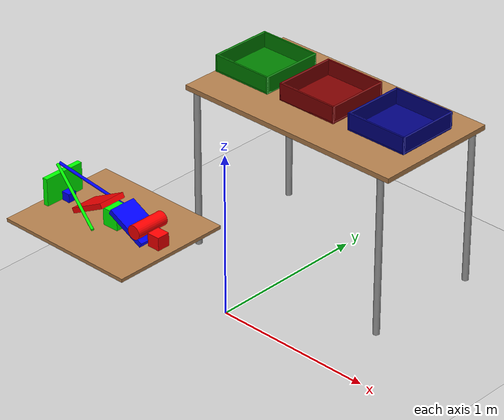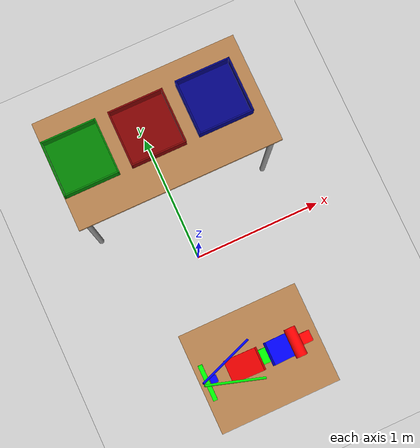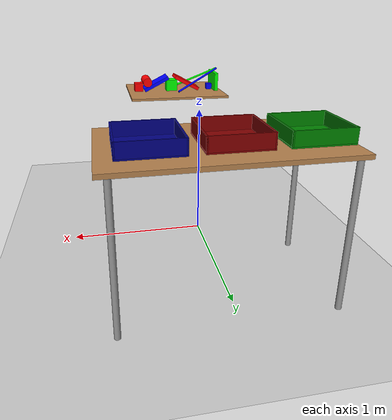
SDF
<sdf version="1.7">
 <world name="default">
  <light name="sun" type="directional">
   <pose>0 0 10 0 -0 0</pose>
   <diffuse>0.8 0.8 0.8 1</diffuse>
   <specular>0.2 0.2 0.2 1</specular>
   <attenuation>
    <range>1000</range>
    <constant>0.9</constant>
    <linear>0.01</linear>
    <quadratic>0.001</quadratic>
   </attenuation>
   <direction>-0.5 0.1 -0.9</direction>
   <spot><inner_angle>0</inner_angle><outer_angle>0</outer_angle><falloff>0</falloff></spot>
  </light>
  <model name="ground_plane">
   <static>1</static>
   <link name="link">
    <collision name="collision">
     <geometry><plane><normal>0 0 1</normal><size>100 100</size></plane></geometry>
     <surface><friction><ode><mu>100</mu><mu2>50</mu2></ode></friction></surface>
    </collision>
    <visual name="visual">
     <cast_shadows>0</cast_shadows>
     <geometry><plane><normal>0 0 1</normal><size>100 100</size></plane></geometry>
     <material>
      <script><uri>file://media/materials/scripts/gazebo.material</uri><name>Gazebo/Grey</name></script>
     </material>
    </visual>
   </link>
  </model>
  <gravity>0 0 -9.8</gravity>
  <magnetic_field>6e-06 2.3e-05 -4.2e-05</magnetic_field>
  <atmosphere type="adiabatic"/>
  <physics type="ode">
   <max_step_size>0.001</max_step_size>
   <real_time_factor>1</real_time_factor>
   <real_time_update_rate>1000</real_time_update_rate>
  </physics>
  <scene><ambient>0.4 0.4 0.4 1</ambient><background>0.7 0.7 0.7 1</background><shadows>1</shadows></scene>
  <audio><device>default</device></audio>
  <spherical_coordinates>
   <surface_model>EARTH_WGS84</surface_model>
   <latitude_deg>0</latitude_deg>
   <longitude_deg>0</longitude_deg>
   <elevation>0</elevation>
   <heading_deg>0</heading_deg>
  </spherical_coordinates>
  <model name="table">
   <static>1</static>
   <link name="link">
    <collision name="surface">
     <pose>0 0 1 0 -0 0</pose>
     <geometry><box><size>1.5 0.8 0.03</size></box></geometry>
     <surface>
      <friction><ode><mu>10</mu><mu2>5</mu2></ode></friction>
      <contact><ode><soft_cfm>0.0001</soft_cfm><soft_erp>0.4</soft_erp><kp>1e+06</kp><kd>10</kd></ode></contact>
     </surface>
    </collision>
    <visual name="visual1">
     <pose>0 0 1 0 -0 0</pose>
     <geometry><box><size>1.5 0.8 0.03</size></box></geometry>
     <material>
      <script><uri>file://media/materials/scripts/gazebo.material</uri><name>Gazebo/Wood</name></script>
     </material>
    </visual>
    <collision name="front_left_leg">
     <pose>0.68 0.38 0.5 0 -0 0</pose>
     <geometry><cylinder><radius>0.02</radius><length>1</length></cylinder></geometry>
    </collision>
    <visual name="front_left_leg">
     <pose>0.68 0.38 0.5 0 -0 0</pose>
     <geometry><cylinder><radius>0.02</radius><length>1</length></cylinder></geometry>
     <material>
      <script><uri>file://media/materials/scripts/gazebo.material</uri><name>Gazebo/Grey</name></script>
     </material>
    </visual>
    <collision name="front_right_leg">
     <pose>0.68 -0.38 0.5 0 -0 0</pose>
     <geometry><cylinder><radius>0.02</radius><length>1</length></cylinder></geometry>
    </collision>
    <visual name="front_right_leg">
     <pose>0.68 -0.38 0.5 0 -0 0</pose>
     <geometry><cylinder><radius>0.02</radius><length>1</length></cylinder></geometry>
     <material>
      <script><uri>file://media/materials/scripts/gazebo.material</uri><name>Gazebo/Grey</name></script>
     </material>
    </visual>
    <collision name="back_right_leg">
     <pose>-0.68 -0.38 0.5 0 -0 0</pose>
     <geometry><cylinder><radius>0.02</radius><length>1</length></cylinder></geometry>
    </collision>
    <visual name="back_right_leg">
     <pose>-0.68 -0.38 0.5 0 -0 0</pose>
     <geometry><cylinder><radius>0.02</radius><length>1</length></cylinder></geometry>
     <material>
      <script><uri>file://media/materials/scripts/gazebo.material</uri><name>Gazebo/Grey</name></script>
     </material>
    </visual>
    <collision name="back_left_leg">
     <pose>-0.68 0.38 0.5 0 -0 0</pose>
     <geometry><cylinder><radius>0.02</radius><length>1</length></cylinder></geometry>
    </collision>
    <visual name="back_left_leg">
     <pose>-0.68 0.38 0.5 0 -0 0</pose>
     <geometry><cylinder><radius>0.02</radius><length>1</length></cylinder></geometry>
     <material>
      <script><uri>file://media/materials/scripts/gazebo.material</uri><name>Gazebo/Grey</name></script>
     </material>
    </visual>
    <inertial>
     <inertia><ixx>1</ixx><ixy>0</ixy><ixz>0</ixz><iyy>1</iyy><iyz>0</iyz><izz>1</izz></inertia>
     <mass>50</mass>
    </inertial>
   </link>
   <pose>0.056083 0.801191 -1.2e-05 0 -0 2.5e-05</pose>
  </model>
  <plugin name="gazebo_link_attacher" filename="libgazebo_link_attacher.so"/>
  <plugin name="gazebo_ros_state" filename="libgazebo_ros_state.so">
   <namespace>/gazebo</namespace>
   <update_rate>100</update_rate>
  </plugin>
  <model name="cube_b">
   <link name="link_2">
    <inertial>
     <mass>2</mass>
     <inertia><ixx>0.0452</ixx><ixy>0</ixy><ixz>0</ixz><iyy>0.0452</iyy><iyz>0</iyz><izz>0.0452</izz></inertia>
    </inertial>
    <visual name="visual">
     <geometry><box><size>0.05 0.05 0.05</size></box></geometry>
     <material>
      <lighting>1</lighting>
      <script><uri>file://media/materials/scripts/gazebo.material</uri><name>Gazebo/Grey</name></script>
      <ambient>0 0 1 1</ambient>
      <diffuse>0 0 1 1</diffuse>
      <specular>0 0 0 1</specular>
      <emissive>0 0 0 1</emissive>
      <shader type="vertex"><normal_map>__default__</normal_map></shader>
     </material>
    </visual>
    <collision name="collision">
     <geometry><box><size>0.05 0.05 0.05</size></box></geometry>
     <surface>
      <friction>
       <ode><mu>0.8</mu><mu2>0.8</mu2><fdir1>0 0 0</fdir1><slip1>0</slip1><slip2>0</slip2></ode>
       <torsional>
        <coefficient>1</coefficient>
        <patch_radius>0</patch_radius>
        <surface_radius>0</surface_radius>
        <use_patch_radius>1</use_patch_radius>
        <ode><slip>0</slip></ode>
       </torsional>
      </friction>
      <bounce><restitution_coefficient>0</restitution_coefficient><threshold>1e+06</threshold></bounce>
      <contact>
       <collide_without_contact>0</collide_without_contact>
       <collide_without_contact_bitmask>1</collide_without_contact_bitmask>
       <collide_bitmask>1</collide_bitmask>
       <ode>
        <soft_cfm>0.0001</soft_cfm>
        <soft_erp>0.4</soft_erp>
        <kp>1e+06</kp>
        <kd>10</kd>
        <max_vel>0.01</max_vel>
        <min_depth>0</min_depth>
       </ode>
      </contact>
     </surface>
    </collision>
   </link>
   <static>0</static>
   <allow_auto_disable>0</allow_auto_disable>
   <pose>-0.286808 -0.861522 1.00937 -1.56964 -0.004148 -0.006249</pose>
  </model>
  <model name="cube_g">
   <link name="link_2">
    <inertial>
     <mass>2</mass>
     <inertia><ixx>0.07181</ixx><iyy>0.07181</iyy><izz>0.07181</izz><ixy>0</ixy><ixz>0</ixz><iyz>0</iyz></inertia>
    </inertial>
    <visual name="visual">
     <geometry><box><size>0.1 0.1 0.1</size></box></geometry>
     <material>
      <lighting>1</lighting>
      <script><uri>file://media/materials/scripts/gazebo.material</uri><name>Gazebo/Grey</name></script>
      <ambient>0 1 0 1</ambient>
      <diffuse>0 1 0 1</diffuse>
      <specular>0 0 0 1</specular>
      <emissive>0 0 0 1</emissive>
      <shader type="vertex"><normal_map>__default__</normal_map></shader>
     </material>
    </visual>
    <collision name="collision">
     <geometry><box><size>0.1 0.1 0.1</size></box></geometry>
     <surface>
      <friction>
       <ode><mu>0.8</mu><mu2>0.8</mu2><fdir1>0 0 0</fdir1><slip1>0</slip1><slip2>0</slip2></ode>
       <torsional>
        <coefficient>1</coefficient>
        <patch_radius>0</patch_radius>
        <surface_radius>0</surface_radius>
        <use_patch_radius>1</use_patch_radius>
        <ode><slip>0</slip></ode>
       </torsional>
      </friction>
      <bounce><restitution_coefficient>0</restitution_coefficient><threshold>1e+06</threshold></bounce>
      <contact>
       <collide_without_contact>0</collide_without_contact>
       <collide_without_contact_bitmask>1</collide_without_contact_bitmask>
       <collide_bitmask>1</collide_bitmask>
       <ode>
        <soft_cfm>0.0001</soft_cfm>
        <soft_erp>0.4</soft_erp>
        <kp>1e+06</kp>
        <kd>10</kd>
        <max_vel>0.01</max_vel>
        <min_depth>0</min_depth>
       </ode>
      </contact>
     </surface>
    </collision>
   </link>
   <static>0</static>
   <allow_auto_disable>0</allow_auto_disable>
   <pose>0.070772 -0.859993 1.03586 0.000975 -0.004261 -0.002007</pose>
  </model>
  <model name="cube_r">
   <link name="link_2">
    <inertial>
     <mass>2</mass>
     <inertia><ixx>0.0593</ixx><ixy>0</ixy><ixz>0</ixz><iyy>0.0593</iyy><iyz>0</iyz><izz>0.0593</izz></inertia>
    </inertial>
    <visual name="visual">
     <geometry><box><size>0.075 0.075 0.075</size></box></geometry>
     <material>
      <lighting>1</lighting>
      <script><uri>file://media/materials/scripts/gazebo.material</uri><name>Gazebo/Grey</name></script>
      <ambient>1 0 0 1</ambient>
      <diffuse>1 0 0 1</diffuse>
      <specular>0 0 0 1</specular>
      <emissive>0 0 0 1</emissive>
      <shader type="vertex"><normal_map>__default__</normal_map></shader>
     </material>
    </visual>
    <collision name="collision">
     <geometry><box><size>0.075 0.075 0.075</size></box></geometry>
     <surface>
      <friction>
       <ode><mu>0.8</mu><mu2>0.8</mu2><fdir1>0 0 0</fdir1><slip1>0</slip1><slip2>0</slip2></ode>
       <torsional>
        <coefficient>1</coefficient>
        <patch_radius>0</patch_radius>
        <surface_radius>0</surface_radius>
        <use_patch_radius>1</use_patch_radius>
        <ode><slip>0</slip></ode>
       </torsional>
      </friction>
      <bounce><restitution_coefficient>0</restitution_coefficient><threshold>1e+06</threshold></bounce>
      <contact>
       <collide_without_contact>0</collide_without_contact>
       <collide_without_contact_bitmask>1</collide_without_contact_bitmask>
       <collide_bitmask>1</collide_bitmask>
       <ode>
        <soft_cfm>0.0001</soft_cfm>
        <soft_erp>0.4</soft_erp>
        <kp>1e+06</kp>
        <kd>10</kd>
        <max_vel>0.01</max_vel>
        <min_depth>0</min_depth>
       </ode>
      </contact>
     </surface>
    </collision>
   </link>
   <static>0</static>
   <allow_auto_disable>0</allow_auto_disable>
   <pose>0.373961 -0.863292 1.02462 1.56665 -0.001117 1.57138</pose>
  </model>
  <model name="cylinder_r">
   <link name="link_0">
    <inertial>
     <mass>0.2</mass>
     <inertia>
      <ixx>0.000747</ixx>
      <ixy>0</ixy>
      <ixz>0</ixz>
      <iyy>0.000747</iyy>
      <iyz>0</iyz>
      <izz>0.00016</izz>
     </inertia>
    </inertial>
    <visual name="visual">
     <geometry><cylinder><radius>0.04</radius><length>0.2</length></cylinder></geometry>
     <material>
      <lighting>1</lighting>
      <script><uri>file://media/materials/scripts/gazebo.material</uri><name>Gazebo/Grey</name></script>
      <ambient>1 0 0 1</ambient>
      <diffuse>1 0 0 1</diffuse>
      <specular>0 0 0 1</specular>
      <emissive>0 0 0 1</emissive>
      <shader type="vertex"><normal_map>__default__</normal_map></shader>
     </material>
    </visual>
    <collision name="collision">
     <geometry><cylinder><radius>0.04</radius><length>0.2</length></cylinder></geometry>
     <surface>
      <friction>
       <ode><mu>0.5</mu><mu2>0.5</mu2><fdir1>0 0 0</fdir1><slip1>0</slip1><slip2>0</slip2></ode>
       <torsional>
        <coefficient>1</coefficient>
        <patch_radius>0</patch_radius>
        <surface_radius>0</surface_radius>
        <use_patch_radius>1</use_patch_radius>
        <ode><slip>0</slip></ode>
       </torsional>
      </friction>
      <bounce><restitution_coefficient>0</restitution_coefficient><threshold>1e+06</threshold></bounce>
      <contact>
       <collide_without_contact>0</collide_without_contact>
       <collide_without_contact_bitmask>1</collide_without_contact_bitmask>
       <collide_bitmask>1</collide_bitmask>
       <ode>
        <soft_cfm>0.0001</soft_cfm>
        <soft_erp>0.4</soft_erp>
        <kp>1e+06</kp>
        <kd>10</kd>
        <max_vel>0.01</max_vel>
        <min_depth>0</min_depth>
       </ode>
      </contact>
     </surface>
    </collision>
   </link>
   <static>0</static>
   <allow_auto_disable>0</allow_auto_disable>
   <pose>0.298514 -0.862242 1.07514 1.62755 -1.54006 -0.05705</pose>
  </model>
  <model name="cylinder_b">
   <link name="link_0">
    <inertial>
     <mass>0.2</mass>
     <inertia><ixx>0.00331</ixx><ixy>0</ixy><ixz>0</ixz><iyy>0.00331</iyy><iyz>0</iyz><izz>7.11e-06</izz></inertia>
    </inertial>
    <visual name="visual">
     <geometry><cylinder><radius>0.00843157</radius><length>0.445034</length></cylinder></geometry>
     <material>
      <lighting>1</lighting>
      <ambient>0 0 1 1</ambient>
      <diffuse>0 0 1 1</diffuse>
      <specular>0.1 0.1 0.1 1</specular>
      <emissive>0 0 0 1</emissive>
      <shader type="vertex"><normal_map>__default__</normal_map></shader>
     </material>
    </visual>
    <collision name="collision">
     <geometry><cylinder><radius>0.008432</radius><length>0.445034</length></cylinder></geometry>
     <surface>
      <friction>
       <ode><mu>0.4</mu><mu2>0.4</mu2><fdir1>0 0 0</fdir1><slip1>0</slip1><slip2>0</slip2></ode>
       <torsional>
        <coefficient>1</coefficient>
        <patch_radius>0</patch_radius>
        <surface_radius>0</surface_radius>
        <use_patch_radius>1</use_patch_radius>
        <ode><slip>0</slip></ode>
       </torsional>
      </friction>
      <bounce><restitution_coefficient>0</restitution_coefficient><threshold>1e+06</threshold></bounce>
      <contact>
       <collide_without_contact>0</collide_without_contact>
       <collide_without_contact_bitmask>1</collide_without_contact_bitmask>
       <collide_bitmask>1</collide_bitmask>
       <ode>
        <soft_cfm>0.0001</soft_cfm>
        <soft_erp>0.4</soft_erp>
        <kp>1e+06</kp>
        <kd>10</kd>
        <max_vel>0.01</max_vel>
        <min_depth>0</min_depth>
       </ode>
      </contact>
     </surface>
    </collision>
   </link>
   <static>0</static>
   <allow_auto_disable>0</allow_auto_disable>
   <pose>-0.167436 -0.786512 1.08354 -1.07767 0.546142 2.18015</pose>
  </model>
  <model name="cylinder_g">
   <link name="link_0">
    <inertial>
     <mass>0.2</mass>
     <inertia><ixx>0.00331</ixx><ixy>0</ixy><ixz>0</ixz><iyy>0.00331</iyy><iyz>0</iyz><izz>7.11e-06</izz></inertia>
    </inertial>
    <visual name="visual">
     <geometry><cylinder><radius>0.00843157</radius><length>0.445034</length></cylinder></geometry>
     <material>
      <lighting>1</lighting>
      <ambient>0 1 0 1</ambient>
      <diffuse>0 1 0 1</diffuse>
      <specular>0.1 0.1 0.1 1</specular>
      <emissive>0 0 0 1</emissive>
      <shader type="vertex"><normal_map>__default__</normal_map></shader>
     </material>
    </visual>
    <collision name="collision">
     <geometry><cylinder><radius>0.008432</radius><length>0.445034</length></cylinder></geometry>
     <surface>
      <friction>
       <ode><mu>0.5</mu><mu2>0.5</mu2><fdir1>0 0 0</fdir1><slip1>0</slip1><slip2>0</slip2></ode>
       <torsional>
        <coefficient>1</coefficient>
        <patch_radius>0</patch_radius>
        <surface_radius>0</surface_radius>
        <use_patch_radius>1</use_patch_radius>
        <ode><slip>0</slip></ode>
       </torsional>
      </friction>
      <bounce><restitution_coefficient>0</restitution_coefficient><threshold>1e+06</threshold></bounce>
      <contact>
       <collide_without_contact>0</collide_without_contact>
       <collide_without_contact_bitmask>1</collide_without_contact_bitmask>
       <collide_bitmask>1</collide_bitmask>
       <ode>
        <soft_cfm>0.0001</soft_cfm>
        <soft_erp>0.4</soft_erp>
        <kp>1e+06</kp>
        <kd>10</kd>
        <max_vel>0.01</max_vel>
        <min_depth>0</min_depth>
       </ode>
      </contact>
     </surface>
    </collision>
   </link>
   <static>0</static>
   <allow_auto_disable>0</allow_auto_disable>
   <pose>-0.163751 -0.932083 1.08276 -2.00263 0.279989 -2.01085</pose>
  </model>
  <model name="cuboid_r">
   <link name="link">
    <inertial>
     <mass>2</mass>
     <inertia><ixx>0.00442</ixx><iyy>0.0101</iyy><izz>0.0143</izz><ixy>0</ixy><ixz>0</ixz><iyz>0</iyz></inertia>
    </inertial>
    <visual name="visual">
     <geometry><box><size>0.245 0.16 0.03</size></box></geometry>
     <material><ambient>1 0 0 1</ambient><diffuse>1 0 0 1</diffuse><specular>0.1 0.1 0.1 1</specular></material>
    </visual>
    <collision name="collision">
     <geometry><box><size>0.245 0.16 0.03</size></box></geometry>
     <surface>
      <friction>
       <ode><mu>0.6</mu><mu2>0.6</mu2><fdir1>0 0 0</fdir1><slip1>0</slip1><slip2>0</slip2></ode>
       <torsional>
        <coefficient>1</coefficient>
        <patch_radius>0</patch_radius>
        <surface_radius>0</surface_radius>
        <use_patch_radius>1</use_patch_radius>
        <ode><slip>0</slip></ode>
       </torsional>
      </friction>
      <bounce><restitution_coefficient>0</restitution_coefficient><threshold>1e+06</threshold></bounce>
      <contact>
       <collide_without_contact>0</collide_without_contact>
       <collide_without_contact_bitmask>1</collide_without_contact_bitmask>
       <collide_bitmask>1</collide_bitmask>
       <ode>
        <soft_cfm>0.0001</soft_cfm>
        <soft_erp>0.4</soft_erp>
        <kp>1e+06</kp>
        <kd>10</kd>
        <max_vel>0.01</max_vel>
        <min_depth>0</min_depth>
       </ode>
      </contact>
     </surface>
    </collision>
   </link>
   <static>0</static>
   <allow_auto_disable>0</allow_auto_disable>
   <pose>-0.066206 -0.86122 1.05612 3.14019 0.493573 3.13261</pose>
  </model>
  <model name="cuboid_g">
   <link name="link">
    <inertial>
     <mass>2</mass>
     <inertia><ixx>0.00442</ixx><iyy>0.0101</iyy><izz>0.0143</izz><ixy>0</ixy><ixz>0</ixz><iyz>0</iyz></inertia>
    </inertial>
    <visual name="visual">
     <geometry><box><size>0.245 0.16 0.03</size></box></geometry>
     <material><ambient>0 1 0 1</ambient><diffuse>0 1 0 1</diffuse><specular>0.1 0.1 0.1 1</specular></material>
    </visual>
    <collision name="collision">
     <geometry><box><size>0.245 0.16 0.03</size></box></geometry>
     <surface>
      <friction>
       <ode><mu>0.6</mu><mu2>0.6</mu2><fdir1>0 0 0</fdir1><slip1>0</slip1><slip2>0</slip2></ode>
       <torsional>
        <coefficient>1</coefficient>
        <patch_radius>0</patch_radius>
        <surface_radius>0</surface_radius>
        <use_patch_radius>1</use_patch_radius>
        <ode><slip>0</slip></ode>
       </torsional>
      </friction>
      <bounce><restitution_coefficient>0</restitution_coefficient><threshold>1e+06</threshold></bounce>
      <contact>
       <collide_without_contact>0</collide_without_contact>
       <collide_without_contact_bitmask>1</collide_without_contact_bitmask>
       <collide_bitmask>1</collide_bitmask>
       <ode>
        <soft_cfm>0.0001</soft_cfm>
        <soft_erp>0.4</soft_erp>
        <kp>1e+06</kp>
        <kd>10</kd>
        <max_vel>0.01</max_vel>
        <min_depth>0</min_depth>
       </ode>
      </contact>
     </surface>
    </collision>
   </link>
   <static>0</static>
   <allow_auto_disable>0</allow_auto_disable>
   <pose>-0.331588 -0.86211 1.06419 -1.57497 -0.001132 1.56916</pose>
  </model>
  <model name="cuboid_b">
   <link name="link">
    <inertial>
     <mass>2</mass>
     <inertia><ixx>0.00442</ixx><iyy>0.0101</iyy><izz>0.0143</izz><ixy>0</ixy><ixz>0</ixz><iyz>0</iyz></inertia>
    </inertial>
    <visual name="visual">
     <geometry><box><size>0.245 0.16 0.03</size></box></geometry>
     <material><ambient>0 0 1 1</ambient><diffuse>0 0 1 1</diffuse><specular>0.1 0.1 0.1 1</specular></material>
    </visual>
    <collision name="collision">
     <geometry><box><size>0.245 0.16 0.03</size></box></geometry>
     <surface>
      <friction>
       <ode><mu>0.6</mu><mu2>0.6</mu2><fdir1>0 0 0</fdir1><slip1>0</slip1><slip2>0</slip2></ode>
       <torsional>
        <coefficient>1</coefficient>
        <patch_radius>0</patch_radius>
        <surface_radius>0</surface_radius>
        <use_patch_radius>1</use_patch_radius>
        <ode><slip>0</slip></ode>
       </torsional>
      </friction>
      <bounce><restitution_coefficient>0</restitution_coefficient><threshold>1e+06</threshold></bounce>
      <contact>
       <collide_without_contact>0</collide_without_contact>
       <collide_without_contact_bitmask>1</collide_without_contact_bitmask>
       <collide_bitmask>1</collide_bitmask>
       <ode>
        <soft_cfm>0.0001</soft_cfm>
        <soft_erp>0.4</soft_erp>
        <kp>1e+06</kp>
        <kd>10</kd>
        <max_vel>0.01</max_vel>
        <min_depth>0</min_depth>
       </ode>
      </contact>
     </surface>
    </collision>
   </link>
   <static>0</static>
   <allow_auto_disable>0</allow_auto_disable>
   <pose>0.215578 -0.862195 1.0552 -0.001286 -0.464718 3.14064</pose>
  </model>
  <model name="workspace">
   <link name="link">
    <inertial>
     <mass>100</mass>
     <inertia><ixx>6.02417</ixx><ixy>0</ixy><ixz>0</ixz><iyy>4.08667</iyy><iyz>0</iyz><izz>10.1042</izz></inertia>
    </inertial>
    <visual name="visual">
     <geometry><box><size>0.7 0.85 0.02</size></box></geometry>
     <material>
      <script><name>Gazebo/Wood</name><uri>file://media/materials/scripts/gazebo.material</uri></script>
      <shader type="pixel"/>
     </material>
    </visual>
    <collision name="collision">
     <geometry><box><size>0.7 0.85 0.02</size></box></geometry>
     <surface>
      <friction>
       <ode><mu>100</mu><mu2>50</mu2><fdir1>0 0 0</fdir1><slip1>0</slip1><slip2>0</slip2></ode>
       <torsional>
        <coefficient>1</coefficient>
        <patch_radius>0</patch_radius>
        <surface_radius>0</surface_radius>
        <use_patch_radius>1</use_patch_radius>
        <ode><slip>0</slip></ode>
       </torsional>
      </friction>
      <bounce><restitution_coefficient>0</restitution_coefficient><threshold>1e+06</threshold></bounce>
      <contact>
       <collide_without_contact>0</collide_without_contact>
       <collide_without_contact_bitmask>1</collide_without_contact_bitmask>
       <collide_bitmask>1</collide_bitmask>
       <ode>
        <soft_cfm>0.0001</soft_cfm>
        <soft_erp>0.2</soft_erp>
        <kp>1e+13</kp>
        <kd>10</kd>
        <max_vel>0.01</max_vel>
        <min_depth>0</min_depth>
       </ode>
       <bullet>
        <split_impulse>1</split_impulse>
        <split_impulse_penetration_threshold>-0.01</split_impulse_penetration_threshold>
        <soft_cfm>0</soft_cfm>
        <soft_erp>0.2</soft_erp>
        <kp>1e+13</kp>
        <kd>1</kd>
       </bullet>
      </contact>
     </surface>
    </collision>
   </link>
   <static>1</static>
   <pose>0.0416 -0.859914 0.975746 -0.004154 -0.001127 1.57039</pose>
  </model>
  <model name="tray_red">
   <static>1</static>
   <link name="link">
    <collision name="base_collision">
     <pose>0 0 0.01 0 -0 0</pose>
     <geometry><box><size>0.4 0.4 0.01</size></box></geometry>
     <surface><contact><ode><mu>50</mu><mu2>50</mu2></ode></contact></surface>
    </collision>
    <visual name="base_visual">
     <pose>0 0 0.01 0 -0 0</pose>
     <geometry><box><size>0.4 0.4 0.01</size></box></geometry>
     <material>
      <ambient>1 0 0 1</ambient>
      <diffuse>0.5 0 0 1</diffuse>
      <specular>0 0 0 1</specular>
      <emissive>0 0 0 1</emissive>
      <shininess>100</shininess>
     </material>
    </visual>
    <collision name="front_collision">
     <pose>0 0.195 0.06 0 -0 0</pose>
     <geometry><box><size>0.4 0.01 0.1</size></box></geometry>
    </collision>
    <visual name="front_visual">
     <pose>0 0.195 0.06 0 -0 0</pose>
     <geometry><box><size>0.4 0.01 0.1</size></box></geometry>
     <material>
      <ambient>1 0 0 1</ambient>
      <diffuse>0.5 0 0 1</diffuse>
      <specular>0 0 0 1</specular>
      <emissive>0 0 0 1</emissive>
     </material>
    </visual>
    <collision name="back_collision">
     <pose>0 -0.195 0.06 0 -0 0</pose>
     <geometry><box><size>0.4 0.01 0.1</size></box></geometry>
    </collision>
    <visual name="back_visual">
     <pose>0 -0.195 0.06 0 -0 0</pose>
     <geometry><box><size>0.4 0.01 0.1</size></box></geometry>
     <material>
      <ambient>1 0 0 1</ambient>
      <diffuse>0.5 0 0 1</diffuse>
      <specular>0 0 0 1</specular>
      <emissive>0 0 0 1</emissive>
     </material>
    </visual>
    <collision name="left_collision">
     <pose>0.195 0 0.06 0 -0 0</pose>
     <geometry><box><size>0.01 0.4 0.1</size></box></geometry>
    </collision>
    <visual name="left_visual">
     <pose>0.195 0 0.06 0 -0 0</pose>
     <geometry><box><size>0.01 0.4 0.1</size></box></geometry>
     <material>
      <ambient>1 0 0 1</ambient>
      <diffuse>0.5 0 0 1</diffuse>
      <specular>0 0 0 1</specular>
      <emissive>0 0 0 1</emissive>
     </material>
    </visual>
    <collision name="right_collision">
     <pose>-0.195 0 0.06 0 -0 0</pose>
     <geometry><box><size>0.01 0.4 0.1</size></box></geometry>
    </collision>
    <visual name="right_visual">
     <pose>-0.195 0 0.06 0 -0 0</pose>
     <geometry><box><size>0.01 0.4 0.1</size></box></geometry>
     <material>
      <ambient>1 0 0 1</ambient>
      <diffuse>0.5 0 0 1</diffuse>
      <specular>0 0 0 1</specular>
      <emissive>0 0 0 1</emissive>
     </material>
    </visual>
    <inertial>
     <inertia><ixx>1</ixx><ixy>0</ixy><ixz>0</ixz><iyy>1</iyy><iyz>0</iyz><izz>1</izz></inertia>
     <mass>1</mass>
    </inertial>
   </link>
   <pose>0.003367 0.836815 1.00999 0 -0 0</pose>
  </model>
  <model name="tray_green">
   <static>1</static>
   <link name="link">
    <collision name="base_collision">
     <pose>0 0 0.01 0 -0 0</pose>
     <geometry><box><size>0.4 0.4 0.01</size></box></geometry>
     <surface><contact><ode><mu>50</mu><mu2>50</mu2></ode></contact></surface>
    </collision>
    <visual name="base_visual">
     <pose>0 0 0.01 0 -0 0</pose>
     <geometry><box><size>0.4 0.4 0.01</size></box></geometry>
     <material><ambient>0 1 0 1</ambient><diffuse>0 0.5 0 1</diffuse></material>
    </visual>
    <collision name="front_collision">
     <pose>0 0.195 0.06 0 -0 0</pose>
     <geometry><box><size>0.4 0.01 0.1</size></box></geometry>
    </collision>
    <visual name="front_visual">
     <pose>0 0.195 0.06 0 -0 0</pose>
     <geometry><box><size>0.4 0.01 0.1</size></box></geometry>
     <material><ambient>0 1 0 1</ambient><diffuse>0 0.5 0 1</diffuse></material>
    </visual>
    <collision name="back_collision">
     <pose>0 -0.195 0.06 0 -0 0</pose>
     <geometry><box><size>0.4 0.01 0.1</size></box></geometry>
    </collision>
    <visual name="back_visual">
     <pose>0 -0.195 0.06 0 -0 0</pose>
     <geometry><box><size>0.4 0.01 0.1</size></box></geometry>
     <material><ambient>0 1 0 1</ambient><diffuse>0 0.5 0 1</diffuse></material>
    </visual>
    <collision name="left_collision">
     <pose>0.195 0 0.06 0 -0 0</pose>
     <geometry><box><size>0.01 0.4 0.1</size></box></geometry>
    </collision>
    <visual name="left_visual">
     <pose>0.195 0 0.06 0 -0 0</pose>
     <geometry><box><size>0.01 0.4 0.1</size></box></geometry>
     <material><ambient>0 1 0 1</ambient><diffuse>0 0.5 0 1</diffuse></material>
    </visual>
    <collision name="right_collision">
     <pose>-0.195 0 0.06 0 -0 0</pose>
     <geometry><box><size>0.01 0.4 0.1</size></box></geometry>
    </collision>
    <visual name="right_visual">
     <pose>-0.195 0 0.06 0 -0 0</pose>
     <geometry><box><size>0.01 0.4 0.1</size></box></geometry>
     <material><ambient>0 1 0 1</ambient><diffuse>0 0.5 0 1</diffuse></material>
    </visual>
    <inertial>
     <inertia><ixx>1</ixx><ixy>0</ixy><ixz>0</ixz><iyy>1</iyy><iyz>0</iyz><izz>1</izz></inertia>
     <mass>1</mass>
    </inertial>
   </link>
   <pose>-0.487214 0.834657 1.00999 0 -0 0</pose>
  </model>
  <model name="tray_blue">
   <static>1</static>
   <link name="link">
    <collision name="base_collision">
     <pose>0 0 0.01 0 -0 0</pose>
     <geometry><box><size>0.4 0.4 0.01</size></box></geometry>
     <surface><contact><ode><mu>50</mu><mu2>50</mu2></ode></contact></surface>
    </collision>
    <visual name="base_visual">
     <pose>0 0 0.01 0 -0 0</pose>
     <geometry><box><size>0.4 0.4 0.01</size></box></geometry>
     <material><ambient>0 0 1 1</ambient><diffuse>0 0 0.5 1</diffuse></material>
    </visual>
    <collision name="front_collision">
     <pose>0 0.195 0.06 0 -0 0</pose>
     <geometry><box><size>0.4 0.01 0.1</size></box></geometry>
    </collision>
    <visual name="front_visual">
     <pose>0 0.195 0.06 0 -0 0</pose>
     <geometry><box><size>0.4 0.01 0.1</size></box></geometry>
     <material><ambient>0 0 1 1</ambient><diffuse>0 0 0.5 1</diffuse></material>
    </visual>
    <collision name="back_collision">
     <pose>0 -0.195 0.06 0 -0 0</pose>
     <geometry><box><size>0.4 0.01 0.1</size></box></geometry>
    </collision>
    <visual name="back_visual">
     <pose>0 -0.195 0.06 0 -0 0</pose>
     <geometry><box><size>0.4 0.01 0.1</size></box></geometry>
     <material><ambient>0 0 1 1</ambient><diffuse>0 0 0.5 1</diffuse></material>
    </visual>
    <collision name="left_collision">
     <pose>0.195 0 0.06 0 -0 0</pose>
     <geometry><box><size>0.01 0.4 0.1</size></box></geometry>
    </collision>
    <visual name="left_visual">
     <pose>0.195 0 0.06 0 -0 0</pose>
     <geometry><box><size>0.01 0.4 0.1</size></box></geometry>
     <material><ambient>0 0 1 1</ambient><diffuse>0 0 0.5 1</diffuse></material>
    </visual>
    <collision name="right_collision">
     <pose>-0.195 0 0.06 0 -0 0</pose>
     <geometry><box><size>0.01 0.4 0.1</size></box></geometry>
    </collision>
    <visual name="right_visual">
     <pose>-0.195 0 0.06 0 -0 0</pose>
     <geometry><box><size>0.01 0.4 0.1</size></box></geometry>
     <material><ambient>0 0 1 1</ambient><diffuse>0 0 0.5 1</diffuse></material>
    </visual>
    <inertial>
     <inertia><ixx>1</ixx><ixy>0</ixy><ixz>0</ixz><iyy>1</iyy><iyz>0</iyz><izz>1</izz></inertia>
     <mass>1</mass>
    </inertial>
   </link>
   <pose>0.500589 0.844197 1.00999 0 -0 0</pose>
  </model>
 </world>
</sdf>
